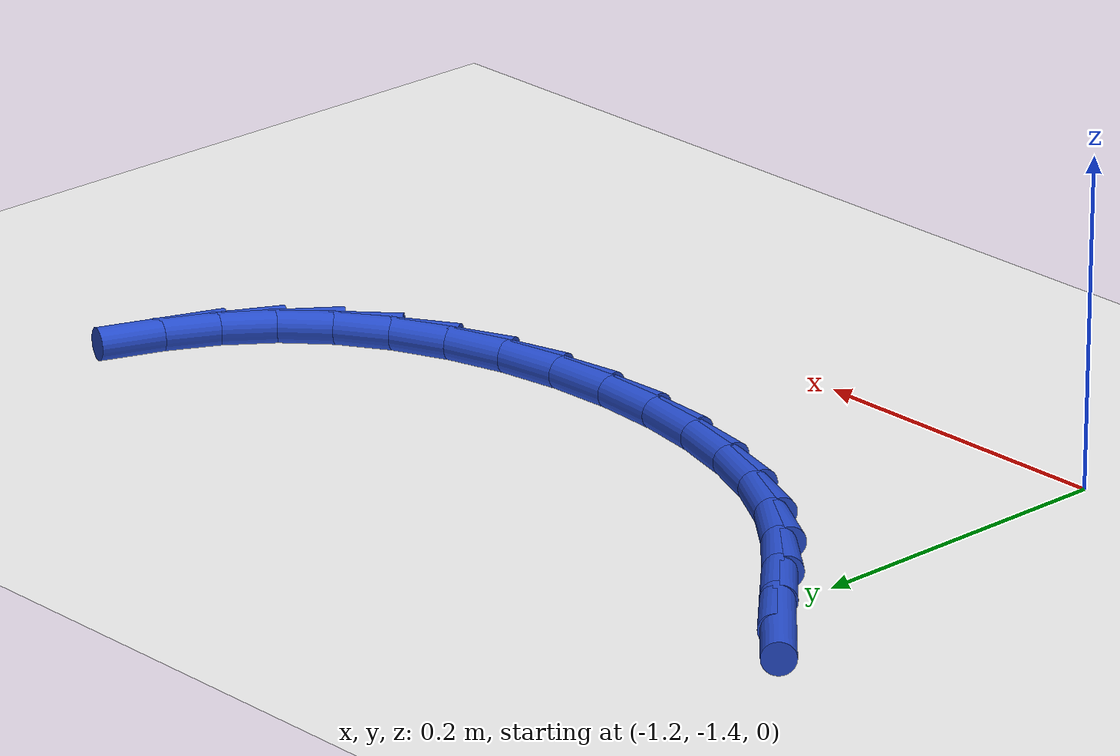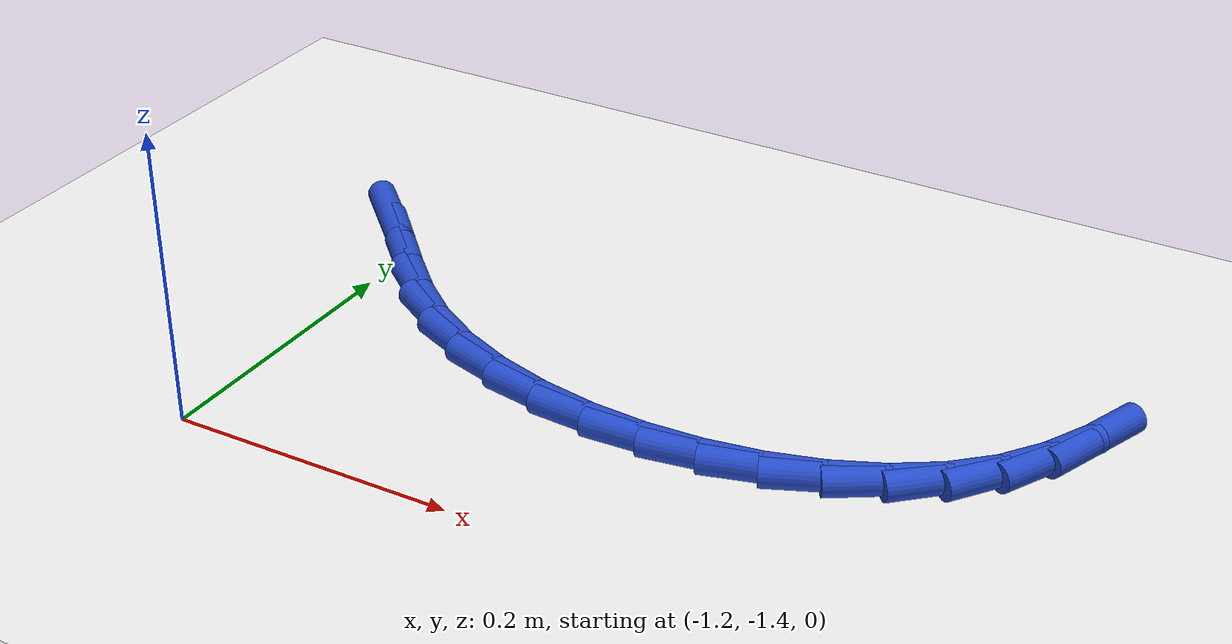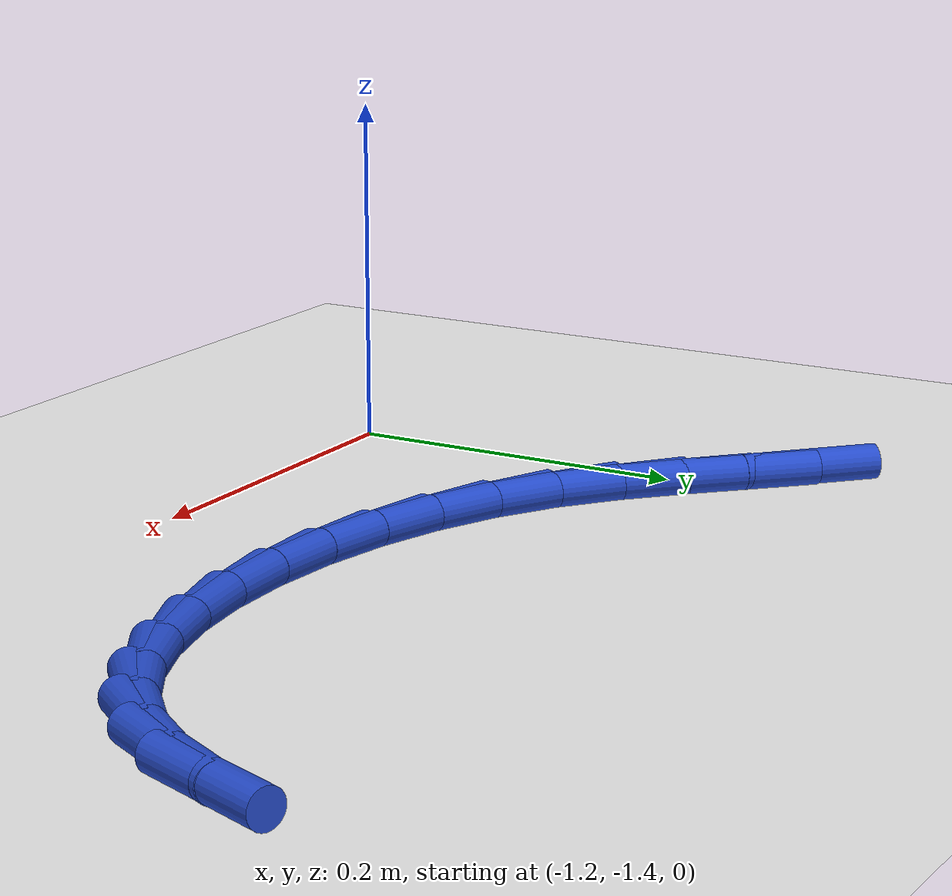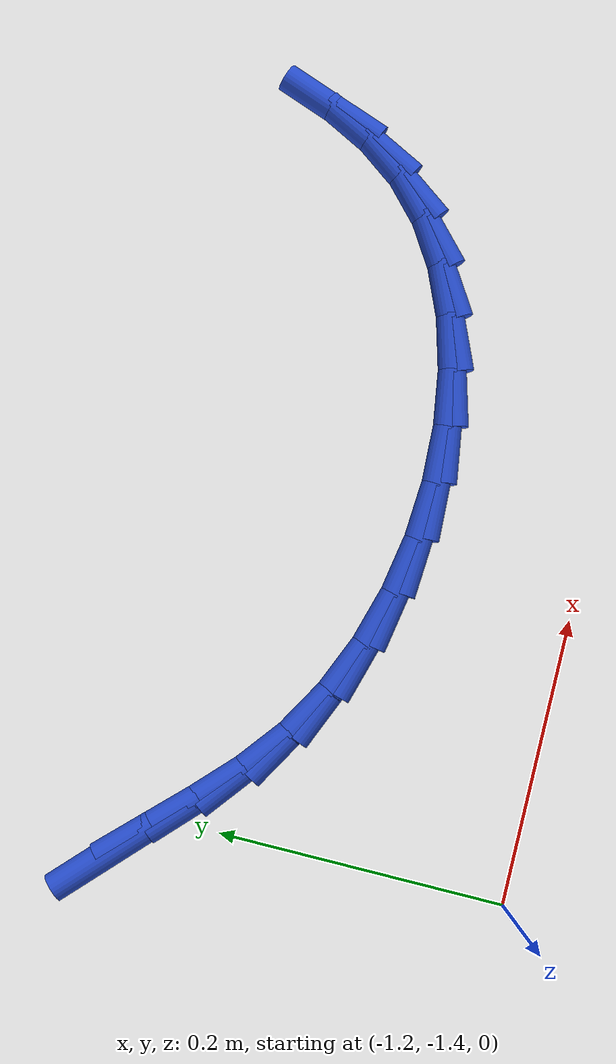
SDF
<sdf version="1.6">
 <world name="default">
  <model name="ground_plane">
   <static>1</static>
   <link name="link">
    <collision name="collision">
     <geometry><plane><normal>0 0 1</normal><size>100 100</size></plane></geometry>
     <surface><friction><ode><mu>100</mu><mu2>50</mu2></ode></friction></surface>
    </collision>
    <visual name="visual">
     <cast_shadows>0</cast_shadows>
     <geometry><plane><normal>0 0 1</normal><size>100 100</size></plane></geometry>
     <material>
      <script><uri>file://media/materials/scripts/gazebo.material</uri><name>Gazebo/WhiteGlow</name></script>
     </material>
    </visual>
   </link>
  </model>
  <model name="line">
   <link name="link_154">
    <pose>-1.2330215979839407 -1.1271005039660682 0.01 0 1.57 -0.7640442573212141</pose>
    <collision name="collision">
     <geometry><cylinder><radius>0.01</radius><length>0.08</length></cylinder></geometry>
    </collision>
    <visual name="visual">
     <material>
      <script><name>Gazebo/Blue</name><uri>file://media/materials/scripts/gazebo.material</uri></script>
     </material>
     <geometry><cylinder><radius>0.01</radius><length>0.08</length></cylinder></geometry>
    </visual>
   </link>
   <link name="link_155">
    <pose>-1.2067086489371281 -1.152313015891148 0.01 0 1.57 -0.7991619174023531</pose>
    <collision name="collision">
     <geometry><cylinder><radius>0.01</radius><length>0.08</length></cylinder></geometry>
    </collision>
    <visual name="visual">
     <material>
      <script><name>Gazebo/Blue</name><uri>file://media/materials/scripts/gazebo.material</uri></script>
     </material>
     <geometry><cylinder><radius>0.01</radius><length>0.08</length></cylinder></geometry>
    </visual>
   </link>
   <link name="link_156">
    <pose>-1.1803875709577376 -1.1793688063527694 0.01 0 1.57 -0.7666266556334971</pose>
    <collision name="collision">
     <geometry><cylinder><radius>0.01</radius><length>0.08</length></cylinder></geometry>
    </collision>
    <visual name="visual">
     <material>
      <script><name>Gazebo/Blue</name><uri>file://media/materials/scripts/gazebo.material</uri></script>
     </material>
     <geometry><cylinder><radius>0.01</radius><length>0.08</length></cylinder></geometry>
    </visual>
   </link>
   <link name="link_157">
    <pose>-1.1526567105524532 -1.2060776317263104 0.01 0 1.57 -0.6695561608597939</pose>
    <collision name="collision">
     <geometry><cylinder><radius>0.01</radius><length>0.08</length></cylinder></geometry>
    </collision>
    <visual name="visual">
     <material>
      <script><name>Gazebo/Blue</name><uri>file://media/materials/scripts/gazebo.material</uri></script>
     </material>
     <geometry><cylinder><radius>0.01</radius><length>0.08</length></cylinder></geometry>
    </visual>
   </link>
   <link name="link_158">
    <pose>-1.1221164497007055 -1.230251225675517 0.01 0 1.57 -0.5306076486274367</pose>
    <collision name="collision">
     <geometry><cylinder><radius>0.01</radius><length>0.08</length></cylinder></geometry>
    </collision>
    <visual name="visual">
     <material>
      <script><name>Gazebo/Blue</name><uri>file://media/materials/scripts/gazebo.material</uri></script>
     </material>
     <geometry><cylinder><radius>0.01</radius><length>0.08</length></cylinder></geometry>
    </visual>
   </link>
   <link name="link_159">
    <pose>-1.087969469938626 -1.2502864045739621 0.01 0 1.57 -0.4000269544489261</pose>
    <collision name="collision">
     <geometry><cylinder><radius>0.01</radius><length>0.08</length></cylinder></geometry>
    </collision>
    <visual name="visual">
     <material>
      <script><name>Gazebo/Blue</name><uri>file://media/materials/scripts/gazebo.material</uri></script>
     </material>
     <geometry><cylinder><radius>0.01</radius><length>0.08</length></cylinder></geometry>
    </visual>
   </link>
   <link name="link_160">
    <pose>-1.0508577699689905 -1.265978158808105 0.01 0 1.57 -0.28161818932191984</pose>
    <collision name="collision">
     <geometry><cylinder><radius>0.01</radius><length>0.08</length></cylinder></geometry>
    </collision>
    <visual name="visual">
     <material>
      <script><name>Gazebo/Blue</name><uri>file://media/materials/scripts/gazebo.material</uri></script>
     </material>
     <geometry><cylinder><radius>0.01</radius><length>0.08</length></cylinder></geometry>
    </visual>
   </link>
   <link name="link_161">
    <pose>-1.0116338148782549 -1.2773259289266559 0.01 0 1.57 -0.17129337469148256</pose>
    <collision name="collision">
     <geometry><cylinder><radius>0.01</radius><length>0.08</length></cylinder></geometry>
    </collision>
    <visual name="visual">
     <material>
      <script><name>Gazebo/Blue</name><uri>file://media/materials/scripts/gazebo.material</uri></script>
     </material>
     <geometry><cylinder><radius>0.01</radius><length>0.08</length></cylinder></geometry>
    </visual>
   </link>
   <link name="link_162">
    <pose>-0.9711500697528755 -1.2843291554783236 0.01 0 1.57 -0.06491365704845034</pose>
    <collision name="collision">
     <geometry><cylinder><radius>0.01</radius><length>0.08</length></cylinder></geometry>
    </collision>
    <visual name="visual">
     <material>
      <script><name>Gazebo/Blue</name><uri>file://media/materials/scripts/gazebo.material</uri></script>
     </material>
     <geometry><cylinder><radius>0.01</radius><length>0.08</length></cylinder></geometry>
    </visual>
   </link>
   <link name="link_163">
    <pose>-0.9302589996793091 -1.2869872790118173 0.01 0 1.57 0.04169914543102956</pose>
    <collision name="collision">
     <geometry><cylinder><radius>0.01</radius><length>0.08</length></cylinder></geometry>
    </collision>
    <visual name="visual">
     <material>
      <script><name>Gazebo/Blue</name><uri>file://media/materials/scripts/gazebo.material</uri></script>
     </material>
     <geometry><cylinder><radius>0.01</radius><length>0.08</length></cylinder></geometry>
    </visual>
   </link>
   <link name="link_164">
    <pose>-0.8898130697440106 -1.2852997400758468 0.01 0 1.57 0.15292234734921775</pose>
    <collision name="collision">
     <geometry><cylinder><radius>0.01</radius><length>0.08</length></cylinder></geometry>
    </collision>
    <visual name="visual">
     <material>
      <script><name>Gazebo/Blue</name><uri>file://media/materials/scripts/gazebo.material</uri></script>
     </material>
     <geometry><cylinder><radius>0.01</radius><length>0.08</length></cylinder></geometry>
    </visual>
   </link>
   <link name="link_165">
    <pose>-0.8506647450334386 -1.2792659792191212 0.01 0 1.57 0.2735357322088921</pose>
    <collision name="collision">
     <geometry><cylinder><radius>0.01</radius><length>0.08</length></cylinder></geometry>
    </collision>
    <visual name="visual">
     <material>
      <script><name>Gazebo/Blue</name><uri>file://media/materials/scripts/gazebo.material</uri></script>
     </material>
     <geometry><cylinder><radius>0.01</radius><length>0.08</length></cylinder></geometry>
    </visual>
   </link>
   <link name="link_166">
    <pose>-0.8136664906340482 -1.26888543699035 0.01 0 1.57 0.40881879037458574</pose>
    <collision name="collision">
     <geometry><cylinder><radius>0.01</radius><length>0.08</length></cylinder></geometry>
    </collision>
    <visual name="visual">
     <material>
      <script><name>Gazebo/Blue</name><uri>file://media/materials/scripts/gazebo.material</uri></script>
     </material>
     <geometry><cylinder><radius>0.01</radius><length>0.08</length></cylinder></geometry>
    </visual>
   </link>
   <link name="link_167">
    <pose>-0.7796707716322959 -1.2541575539382421 0.01 0 1.57 0.564253482874644</pose>
    <collision name="collision">
     <geometry><cylinder><radius>0.01</radius><length>0.08</length></cylinder></geometry>
    </collision>
    <visual name="visual">
     <material>
      <script><name>Gazebo/Blue</name><uri>file://media/materials/scripts/gazebo.material</uri></script>
     </material>
     <geometry><cylinder><radius>0.01</radius><length>0.08</length></cylinder></geometry>
    </visual>
   </link>
   <link name="link_168">
    <pose>-0.749530053114638 -1.2350817706115076 0.01 0 1.57 0.7442802848091317</pose>
    <collision name="collision">
     <geometry><cylinder><radius>0.01</radius><length>0.08</length></cylinder></geometry>
    </collision>
    <visual name="visual">
     <material>
      <script><name>Gazebo/Blue</name><uri>file://media/materials/scripts/gazebo.material</uri></script>
     </material>
     <geometry><cylinder><radius>0.01</radius><length>0.08</length></cylinder></geometry>
    </visual>
   </link>
   <link name="link_169">
    <pose>-0.7240960539573351 -1.211657838847157 0.01 0 1.57 0.936256063640162</pose>
    <collision name="collision">
     <geometry><cylinder><radius>0.01</radius><length>0.08</length></cylinder></geometry>
    </collision>
    <visual name="visual">
     <material>
      <script><name>Gazebo/Blue</name><uri>file://media/materials/scripts/gazebo.material</uri></script>
     </material>
     <geometry><cylinder><radius>0.01</radius><length>0.08</length></cylinder></geometry>
    </visual>
   </link>
   <link name="link_170">
    <pose>-0.7037863748752536 -1.1840666067815173 0.01 0 1.57 1.097313627449413</pose>
    <collision name="collision">
     <geometry><cylinder><radius>0.01</radius><length>0.08</length></cylinder></geometry>
    </collision>
    <visual name="visual">
     <material>
      <script><name>Gazebo/Blue</name><uri>file://media/materials/scripts/gazebo.material</uri></script>
     </material>
     <geometry><cylinder><radius>0.01</radius><length>0.08</length></cylinder></geometry>
    </visual>
   </link>
   <link name="link_171">
    <pose>-0.6878559011602828 -1.152973959757342 0.01 0 1.57 1.2173184623609734</pose>
    <collision name="collision">
     <geometry><cylinder><radius>0.01</radius><length>0.08</length></cylinder></geometry>
    </collision>
    <visual name="visual">
     <material>
      <script><name>Gazebo/Blue</name><uri>file://media/materials/scripts/gazebo.material</uri></script>
     </material>
     <geometry><cylinder><radius>0.01</radius><length>0.08</length></cylinder></geometry>
    </visual>
   </link>
  </model>
 </world>
</sdf>
